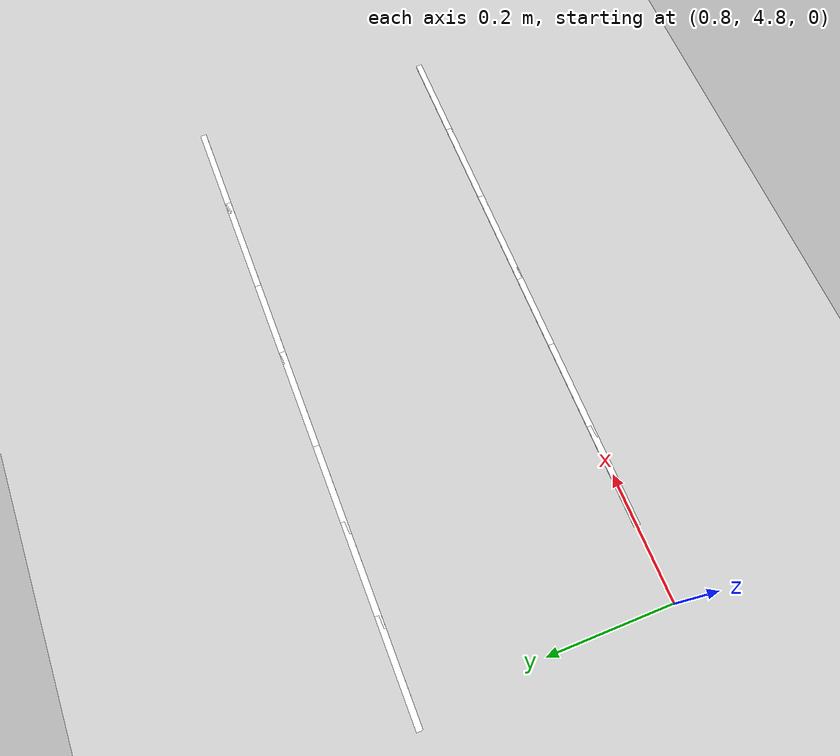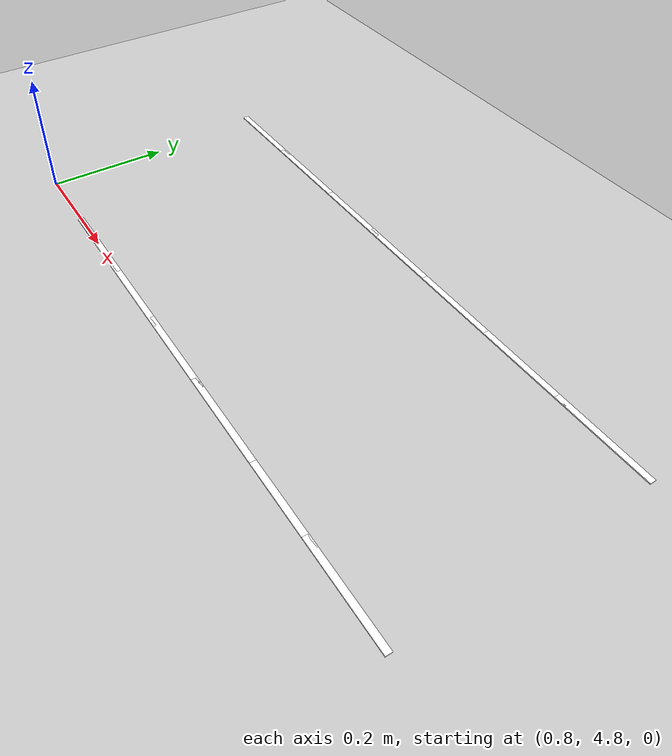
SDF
<sdf version="1.7">
 <world name="default">
  <model name="ground_plane">
   <static>1</static>
   <link name="link">
    <collision name="collision">
     <geometry><plane><normal>0 0 1</normal><size>100 100</size></plane></geometry>
     <surface>
      <contact><collide_bitmask>65535</collide_bitmask></contact>
      <friction><ode><mu>100</mu><mu2>50</mu2></ode></friction>
     </surface>
    </collision>
    <visual name="visual">
     <cast_shadows>0</cast_shadows>
     <geometry><plane><normal>0 0 1</normal><size>100 100</size></plane></geometry>
     <material>
      <script><uri>file://media/materials/scripts/gazebo.material</uri><name>Gazebo/Grey</name></script>
     </material>
    </visual>
   </link>
  </model>
  <model name="lane_line_left_212">
   <static>1</static>
   <link name="link">
    <pose>0 0 -0.004 0 -0 0</pose>
    <visual name="visual">
     <geometry><box><size>0.1629 0.01 0.01</size></box></geometry>
     <material><ambient>1 1 1 1</ambient><diffuse>1 1 1 1</diffuse></material>
    </visual>
    <collision name="collision"><geometry><box><size>0.1629 0.01 0.01</size></box></geometry></collision>
   </link>
   <pose>1.71429 4.8 0 0 -0 3.14159</pose>
  </model>
  <model name="lane_line_right_212">
   <static>1</static>
   <link name="link">
    <pose>0 0 -0.004 0 -0 0</pose>
    <visual name="visual">
     <geometry><box><size>0.1629 0.01 0.01</size></box></geometry>
     <material><ambient>1 1 1 1</ambient><diffuse>1 1 1 1</diffuse></material>
    </visual>
    <collision name="collision"><geometry><box><size>0.1629 0.01 0.01</size></box></geometry></collision>
   </link>
   <pose>1.71429 5.2 0 0 -0 3.14159</pose>
  </model>
  <model name="lane_line_left_213">
   <static>1</static>
   <link name="link">
    <pose>0 0 -0.004 0 -0 0</pose>
    <visual name="visual">
     <geometry><box><size>0.1629 0.01 0.01</size></box></geometry>
     <material><ambient>1 1 1 1</ambient><diffuse>1 1 1 1</diffuse></material>
    </visual>
    <collision name="collision"><geometry><box><size>0.1629 0.01 0.01</size></box></geometry></collision>
   </link>
   <pose>1.57143 4.8 0 0 -0 3.14159</pose>
  </model>
  <model name="lane_line_right_213">
   <static>1</static>
   <link name="link">
    <pose>0 0 -0.004 0 -0 0</pose>
    <visual name="visual">
     <geometry><box><size>0.1629 0.01 0.01</size></box></geometry>
     <material><ambient>1 1 1 1</ambient><diffuse>1 1 1 1</diffuse></material>
    </visual>
    <collision name="collision"><geometry><box><size>0.1629 0.01 0.01</size></box></geometry></collision>
   </link>
   <pose>1.57143 5.2 0 0 -0 3.14159</pose>
  </model>
  <model name="lane_line_left_214">
   <static>1</static>
   <link name="link">
    <pose>0 0 -0.004 0 -0 0</pose>
    <visual name="visual">
     <geometry><box><size>0.1629 0.01 0.01</size></box></geometry>
     <material><ambient>1 1 1 1</ambient><diffuse>1 1 1 1</diffuse></material>
    </visual>
    <collision name="collision"><geometry><box><size>0.1629 0.01 0.01</size></box></geometry></collision>
   </link>
   <pose>1.42857 4.8 0 0 -0 3.14159</pose>
  </model>
  <model name="lane_line_right_214">
   <static>1</static>
   <link name="link">
    <pose>0 0 -0.004 0 -0 0</pose>
    <visual name="visual">
     <geometry><box><size>0.1629 0.01 0.01</size></box></geometry>
     <material><ambient>1 1 1 1</ambient><diffuse>1 1 1 1</diffuse></material>
    </visual>
    <collision name="collision"><geometry><box><size>0.1629 0.01 0.01</size></box></geometry></collision>
   </link>
   <pose>1.42857 5.2 0 0 -0 3.14159</pose>
  </model>
  <model name="lane_line_left_215">
   <static>1</static>
   <link name="link">
    <pose>0 0 -0.004 0 -0 0</pose>
    <visual name="visual">
     <geometry><box><size>0.1629 0.01 0.01</size></box></geometry>
     <material><ambient>1 1 1 1</ambient><diffuse>1 1 1 1</diffuse></material>
    </visual>
    <collision name="collision"><geometry><box><size>0.1629 0.01 0.01</size></box></geometry></collision>
   </link>
   <pose>1.28571 4.8 0 0 -0 3.14159</pose>
  </model>
  <model name="lane_line_right_215">
   <static>1</static>
   <link name="link">
    <pose>0 0 -0.004 0 -0 0</pose>
    <visual name="visual">
     <geometry><box><size>0.1629 0.01 0.01</size></box></geometry>
     <material><ambient>1 1 1 1</ambient><diffuse>1 1 1 1</diffuse></material>
    </visual>
    <collision name="collision"><geometry><box><size>0.1629 0.01 0.01</size></box></geometry></collision>
   </link>
   <pose>1.28571 5.2 0 0 -0 3.14159</pose>
  </model>
  <model name="lane_line_left_216">
   <static>1</static>
   <link name="link">
    <pose>0 0 -0.004 0 -0 0</pose>
    <visual name="visual">
     <geometry><box><size>0.1629 0.01 0.01</size></box></geometry>
     <material><ambient>1 1 1 1</ambient><diffuse>1 1 1 1</diffuse></material>
    </visual>
    <collision name="collision"><geometry><box><size>0.1629 0.01 0.01</size></box></geometry></collision>
   </link>
   <pose>1.14286 4.8 0 0 -0 3.14159</pose>
  </model>
  <model name="lane_line_right_216">
   <static>1</static>
   <link name="link">
    <pose>0 0 -0.004 0 -0 0</pose>
    <visual name="visual">
     <geometry><box><size>0.1629 0.01 0.01</size></box></geometry>
     <material><ambient>1 1 1 1</ambient><diffuse>1 1 1 1</diffuse></material>
    </visual>
    <collision name="collision"><geometry><box><size>0.1629 0.01 0.01</size></box></geometry></collision>
   </link>
   <pose>1.14286 5.2 0 0 -0 3.14159</pose>
  </model>
  <model name="lane_line_left_217">
   <static>1</static>
   <link name="link">
    <pose>0 0 -0.004 0 -0 0</pose>
    <visual name="visual">
     <geometry><box><size>0.1629 0.01 0.01</size></box></geometry>
     <material><ambient>1 1 1 1</ambient><diffuse>1 1 1 1</diffuse></material>
    </visual>
    <collision name="collision"><geometry><box><size>0.1629 0.01 0.01</size></box></geometry></collision>
   </link>
   <pose>1 4.8 0 0 -0 3.14159</pose>
  </model>
  <model name="lane_line_right_217">
   <static>1</static>
   <link name="link">
    <pose>0 0 -0.004 0 -0 0</pose>
    <visual name="visual">
     <geometry><box><size>0.1629 0.01 0.01</size></box></geometry>
     <material><ambient>1 1 1 1</ambient><diffuse>1 1 1 1</diffuse></material>
    </visual>
    <collision name="collision"><geometry><box><size>0.1629 0.01 0.01</size></box></geometry></collision>
   </link>
   <pose>1 5.2 0 0 -0 3.14159</pose>
  </model>
  <model name="lane_line_right_218">
   <static>1</static>
   <link name="link">
    <pose>0 0 -0.004 0 -0 0</pose>
    <visual name="visual">
     <geometry><box><size>0.1629 0.01 0.01</size></box></geometry>
     <material><ambient>1 1 1 1</ambient><diffuse>1 1 1 1</diffuse></material>
    </visual>
    <collision name="collision"><geometry><box><size>0.1629 0.01 0.01</size></box></geometry></collision>
   </link>
   <pose>0.857143 5.2 0 0 -0 3.14159</pose>
  </model>
 </world>
</sdf>
